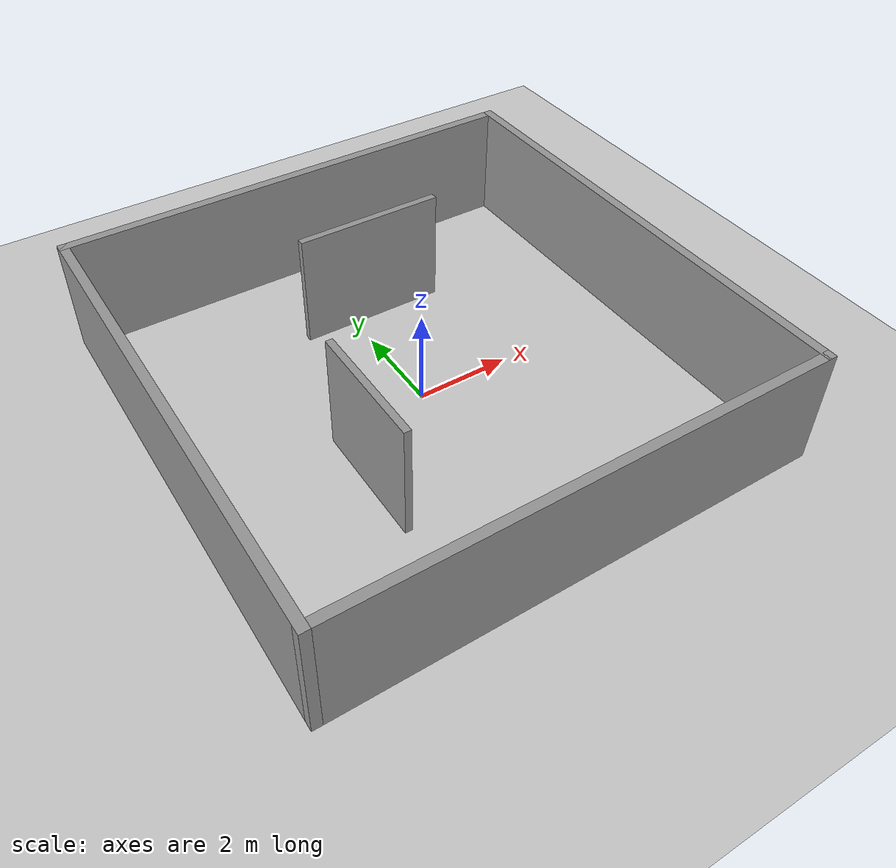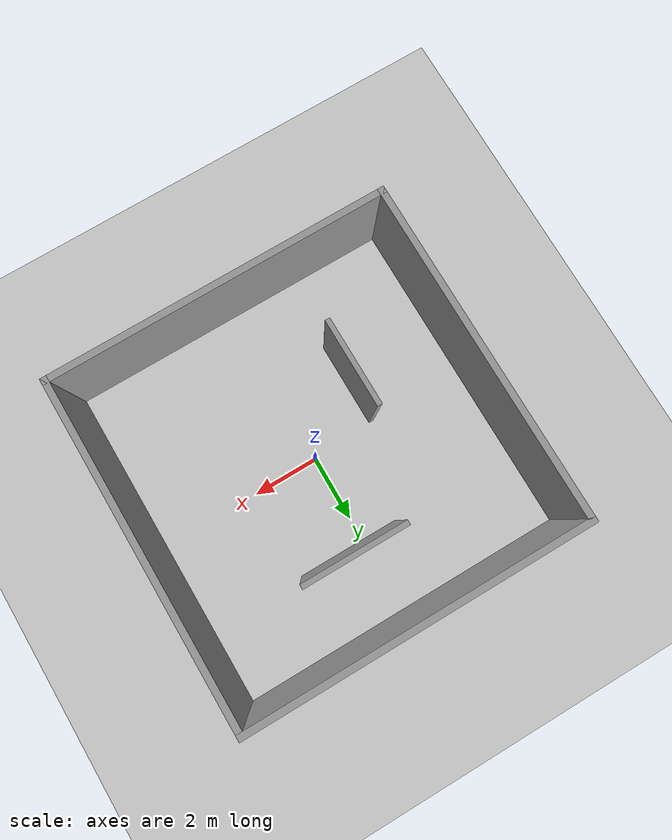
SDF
<sdf version="1.6">
 <world name="default">
  <light name="sun" type="directional">
   <pose>0 0 10 0 -0 0</pose>
   <diffuse>0.8 0.8 0.8 1</diffuse>
   <specular>0.2 0.2 0.2 1</specular>
   <attenuation>
    <range>1000</range>
    <constant>0.9</constant>
    <linear>0.01</linear>
    <quadratic>0.001</quadratic>
   </attenuation>
   <direction>-0.5 0.1 -0.9</direction>
  </light>
  <model name="ground_plane">
   <static>1</static>
   <link name="link">
    <collision name="collision">
     <geometry><plane><normal>0 0 1</normal><size>100 100</size></plane></geometry>
     <surface><friction><ode><mu>100</mu><mu2>50</mu2></ode></friction></surface>
    </collision>
    <visual name="visual">
     <cast_shadows>0</cast_shadows>
     <geometry><plane><normal>0 0 1</normal><size>100 100</size></plane></geometry>
     <material>
      <script><uri>file://media/materials/scripts/gazebo.material</uri><name>Gazebo/Grey</name></script>
     </material>
    </visual>
   </link>
  </model>
  <model name="cylinderRobot">
   <link name="base">
    <pose>0 0 0.029335 0 -0 0</pose>
    <collision name="base_collision">
     <geometry><cylinder><radius>0.04267</radius><length>0.05867</length></cylinder></geometry>
    </collision>
    <inertial>
     <mass>1.2</mass>
     <inertia>
      <ixx>0.00108747</ixx>
      <iyy>0.00108747</iyy>
      <izz>0.00109244</izz>
      <ixy>0</ixy>
      <ixz>0</ixz>
      <iyz>0</iyz>
     </inertia>
    </inertial>
    <visual name="base_visual">
     <geometry><cylinder><radius>0.04267</radius><length>0.05867</length></cylinder></geometry>
    </visual>
   </link>
   <link name="top">
    <pose>0 0 0.095455 0 -0 0</pose>
    <collision name="top_collision">
     <geometry><cylinder><radius>0.04267</radius><length>0.07357</length></cylinder></geometry>
    </collision>
    <inertial>
     <mass>0.1</mass>
     <inertia>
      <ixx>9.0623e-05</ixx>
      <iyy>9.0623e-05</iyy>
      <izz>9.1036e-05</izz>
      <ixy>0</ixy>
      <ixz>0</ixz>
      <iyz>0</iyz>
     </inertia>
    </inertial>
    <visual name="top_visual">
     <geometry><cylinder><radius>0.04267</radius><length>0.07357</length></cylinder></geometry>
    </visual>
    <sensor name="sensor" type="ray">
     <pose>0 0 0.03779 0 -0 0</pose>
     <visualize>1</visualize>
     <update_rate>10</update_rate>
     <always_on>1</always_on>
     <ray>
      <noise><type>gaussian</type><mean>0</mean><stddev>0.02</stddev></noise>
      <scan>
       <horizontal>
        <samples>2</samples>
        <resolution>1</resolution>
        <min_angle>0</min_angle>
        <max_angle>1.5708</max_angle>
       </horizontal>
       <vertical><samples>1</samples><min_angle>0</min_angle><max_angle>0</max_angle></vertical>
      </scan>
      <range><min>0</min><max>70</max><resolution>0.001</resolution></range>
     </ray>
     <plugin name="gazebo_ros_ray_controller" filename="libgazebo_ros_laser.so">
      <topicName>/robot/observe</topicName>
      <frameName>ray_sensor</frameName>
     </plugin>
    </sensor>
   </link>
   <joint name="joint" type="revolute">
    <pose>0 0 -0.036785 0 -0 0</pose>
    <parent>base</parent>
    <child>top</child>
    <axis>
     <xyz>0 0 1</xyz>
     <limit><lower>-1e+16</lower><upper>1e+16</upper></limit>
     <use_parent_model_frame>0</use_parent_model_frame>
     <dynamics><spring_reference>0</spring_reference><spring_stiffness>0</spring_stiffness></dynamics>
    </axis>
   </joint>
  </model>
  <model name="myroom10">
   <link name="Wall_4">
    <collision name="Wall_4_Collision">
     <geometry><box><size>10.4 0.2 2.5</size></box></geometry>
     <pose>0 0 1.25 0 -0 0</pose>
    </collision>
    <visual name="Wall_4_Visual">
     <pose>0 0 1.25 0 -0 0</pose>
     <geometry><box><size>10.4 0.2 2.5</size></box></geometry>
     <material>
      <script><uri>file://media/materials/scripts/gazebo.material</uri><name>Gazebo/Grey</name></script>
      <ambient>1 1 1 1</ambient>
     </material>
     <meta><layer>0</layer></meta>
    </visual>
    <pose>-5.1 0 0 0 -0 1.5708</pose>
   </link>
   <link name="Wall_5">
    <collision name="Wall_5_Collision">
     <geometry><box><size>10.4 0.2 2.5</size></box></geometry>
     <pose>0 0 1.25 0 -0 0</pose>
    </collision>
    <visual name="Wall_5_Visual">
     <pose>0 0 1.25 0 -0 0</pose>
     <geometry><box><size>10.4 0.2 2.5</size></box></geometry>
     <material>
      <script><uri>file://media/materials/scripts/gazebo.material</uri><name>Gazebo/Grey</name></script>
      <ambient>1 1 1 1</ambient>
     </material>
     <meta><layer>0</layer></meta>
    </visual>
    <pose>0 5.1 0 0 -0 0</pose>
   </link>
   <link name="Wall_6">
    <collision name="Wall_6_Collision">
     <geometry><box><size>10.4 0.2 2.5</size></box></geometry>
     <pose>0 0 1.25 0 -0 0</pose>
    </collision>
    <visual name="Wall_6_Visual">
     <pose>0 0 1.25 0 -0 0</pose>
     <geometry><box><size>10.4 0.2 2.5</size></box></geometry>
     <material>
      <script><uri>file://media/materials/scripts/gazebo.material</uri><name>Gazebo/Grey</name></script>
      <ambient>1 1 1 1</ambient>
     </material>
     <meta><layer>0</layer></meta>
    </visual>
    <pose>5.1 0 0 0 -0 -1.5708</pose>
   </link>
   <link name="Wall_7">
    <collision name="Wall_7_Collision">
     <geometry><box><size>10.4 0.2 2.5</size></box></geometry>
     <pose>0 0 1.25 0 -0 0</pose>
    </collision>
    <visual name="Wall_7_Visual">
     <pose>0 0 1.25 0 -0 0</pose>
     <geometry><box><size>10.4 0.2 2.5</size></box></geometry>
     <material>
      <script><uri>file://media/materials/scripts/gazebo.material</uri><name>Gazebo/Grey</name></script>
      <ambient>1 1 1 1</ambient>
     </material>
     <meta><layer>0</layer></meta>
    </visual>
    <pose>0 -5.1 0 0 -0 3.14159</pose>
   </link>
   <static>1</static>
  </model>
  <gravity>0 0 -9.8</gravity>
  <magnetic_field>6e-06 2.3e-05 -4.2e-05</magnetic_field>
  <atmosphere type="adiabatic"/>
  <physics name="default_physics" default="0" type="ode">
   <max_step_size>0.001</max_step_size>
   <real_time_factor>1</real_time_factor>
   <real_time_update_rate>1000</real_time_update_rate>
  </physics>
  <scene><ambient>0.4 0.4 0.4 1</ambient><background>0.7 0.7 0.7 1</background><shadows>1</shadows></scene>
  <audio><device>default</device></audio>
  <spherical_coordinates>
   <surface_model>EARTH_WGS84</surface_model>
   <latitude_deg>0</latitude_deg>
   <longitude_deg>0</longitude_deg>
   <elevation>0</elevation>
   <heading_deg>0</heading_deg>
  </spherical_coordinates>
  <model name="obstacle">
   <pose>-0.018418 0.032247 0 0 -0 0</pose>
   <link name="Wall_0">
    <collision name="Wall_0_Collision">
     <geometry><box><size>2.65 0.15 2.5</size></box></geometry>
     <pose>0 0 1.25 0 -0 0</pose>
    </collision>
    <visual name="Wall_0_Visual">
     <pose>0 0 1.25 0 -0 0</pose>
     <geometry><box><size>2.65 0.15 2.5</size></box></geometry>
     <material>
      <script><uri>file://media/materials/scripts/gazebo.material</uri><name>Gazebo/Grey</name></script>
      <ambient>1 1 1 1</ambient>
     </material>
     <meta><layer>0</layer></meta>
    </visual>
    <pose>-2 -1.5 0 0 -0 1.5708</pose>
   </link>
   <link name="Wall_2">
    <collision name="Wall_2_Collision">
     <geometry><box><size>3.15 0.15 2.5</size></box></geometry>
     <pose>0 0 1.25 0 -0 0</pose>
    </collision>
    <visual name="Wall_2_Visual">
     <pose>0 0 1.25 0 -0 0</pose>
     <geometry><box><size>3.15 0.15 2.5</size></box></geometry>
     <material>
      <script><uri>file://media/materials/scripts/gazebo.material</uri><name>Gazebo/Grey</name></script>
      <ambient>1 1 1 1</ambient>
     </material>
     <meta><layer>0</layer></meta>
    </visual>
    <pose>0.5 2.75 0 0 -0 0</pose>
   </link>
   <static>1</static>
  </model>
 </world>
</sdf>
